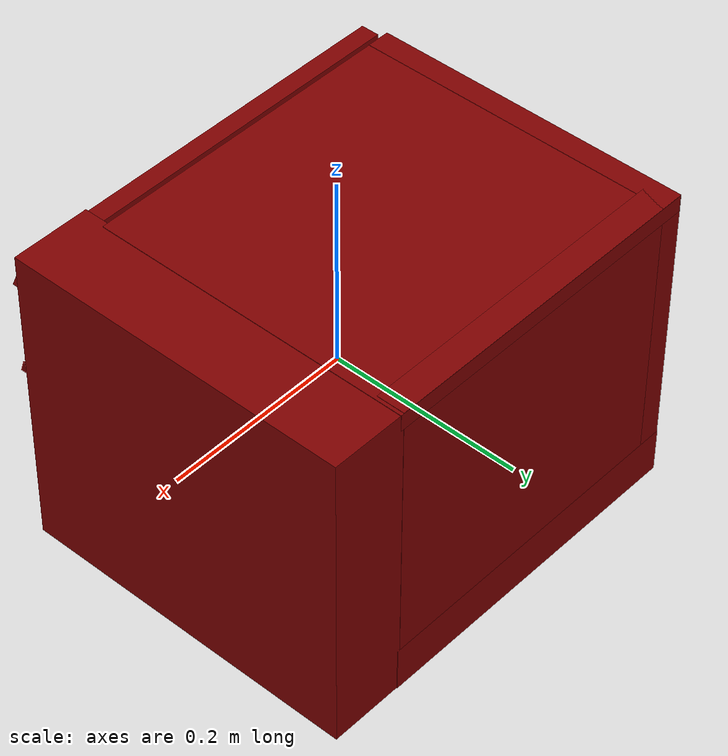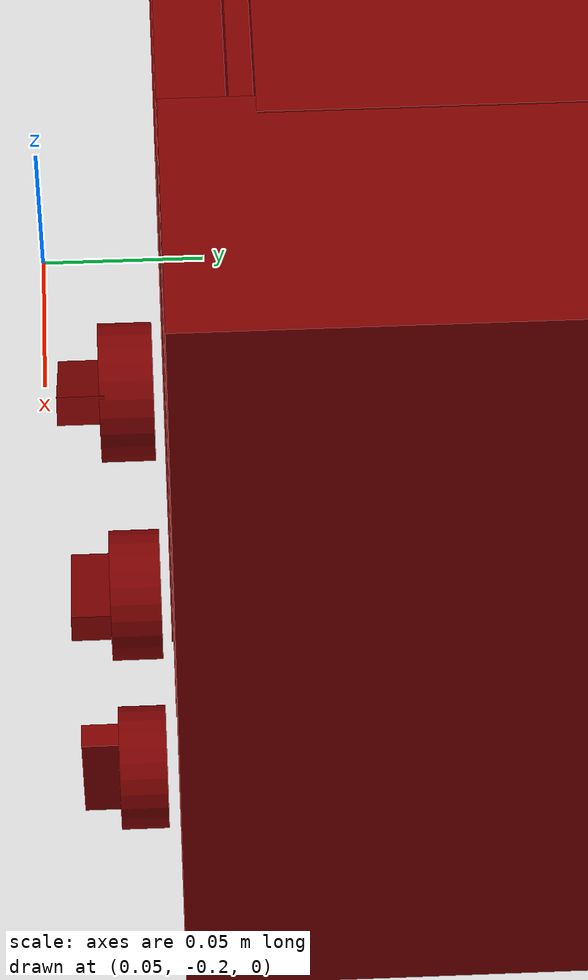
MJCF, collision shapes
<?xml version='1.0' encoding='UTF-8'?>
<mujoco model="model">
  <option timestep="0.002" gravity="0.0 0.0 -9.81"/>
  <compiler angle="radian"/>
  <asset>
    <mesh file="visuals/Body001.obj" name="Body001_vis"/>
    <mesh file="visuals/Container001.obj" name="Container001_vis"/>
    <mesh file="visuals/Door001.obj" name="Door001_vis"/>
    <mesh file="visuals/Door001_Clear.obj" name="Door001_Clear_vis"/>
    <mesh file="visuals/Knob001.obj" name="Knob001_vis"/>
    <mesh file="visuals/Knob002.obj" name="Knob002_vis"/>
    <mesh file="visuals/Knob003.obj" name="Knob003_vis"/>
    <texture file="visuals/T_BC001.png" name="Body001_material" type="2d"/>
    <material name="Body001_material" rgba="1 1 1 1.0" texture="Body001_material" shininess="0.1" specular="4"/>
    <texture file="visuals/T_BC001.png" name="Container001_material" type="2d"/>
    <material name="Container001_material" rgba="1 1 1 1.0" texture="Container001_material" shininess="0.1" specular="4"/>
    <texture file="visuals/T_BC001.png" name="Door001_material" type="2d"/>
    <material name="Door001_material" rgba="1 1 1 1.0" texture="Door001_material" shininess="0.1" specular="4"/>
    <texture file="visuals/T_BC001.png" name="Door001_Clear_material" type="2d"/>
    <material name="Door001_Clear_material" rgba="1 1 1 0.800000011920929" texture="Door001_Clear_material" shininess="0.141421377658844" specular="0.3103448502657381"/>
    <texture file="visuals/T_BC001.png" name="Knob001_material" type="2d"/>
    <material name="Knob001_material" rgba="1 1 1 1.0" texture="Knob001_material" shininess="0.141421377658844" specular="0.3103448502657381"/>
    <texture file="visuals/T_BC001.png" name="Knob002_material" type="2d"/>
    <material name="Knob002_material" rgba="1 1 1 1.0" texture="Knob002_material" shininess="0.141421377658844" specular="0.3103448502657381"/>
    <texture file="visuals/T_BC001.png" name="Knob003_material" type="2d"/>
    <material name="Knob003_material" rgba="1 1 1 1.0" texture="Knob003_material" shininess="0.141421377658844" specular="0.3103448502657381"/>
  </asset>
  <default>
    <default class="visual">
      <geom conaffinity="0" contype="0" group="1" type="mesh"/>
    </default>
    <default class="collision">
      <geom group="0" rgba="0.5 0 0 0.5"/>
    </default>
    <default class="spawn">
      <geom group="0" rgba="1 1 1 0.5" contype="0" conaffinity="0"/>
      <site group="0" rgba="1 1 1 0.5"/>
    </default>
    <default class="region">
      <geom group="1" conaffinity="0" contype="0" rgba="0 1 0 0"/>
    </default>
  </default>
  <worldbody>
    <body>
      <body name="object">
        <geom mesh="Body001_vis" type="mesh" solimp="0.998 0.998 0.001" solref="0.001 1" friction="0.95 0.3 0.1" class="visual" material="Body001_material"/>
        <geom class="collision" type="box" pos="-0.2039780169725418 0.02983897738158703 0.02243412286043167" size="0.012105473317205906 0.1663031131029129 0.14247852563858032" quat="1.0 0.0 0.0 0.0" density="1000.0"/>
        <geom class="collision" type="box" pos="-0.03818407282233238 0.03018273413181305 -0.1412220299243927" size="0.17800679802894592 0.16640129685401917 0.02400331199169159" quat="1.0 0.0 0.0 0.0" density="1000.0"/>
        <geom class="collision" type="box" pos="-0.03884332999587059 0.18181969225406647 0.018248729407787323" size="0.17590925097465515 0.01430332288146019 0.14666391909122467" quat="1.0 0.0 0.0 0.0" density="1000.0"/>
        <geom class="collision" type="box" pos="0.17522159218788147 0.01642169989645481 -0.0005831364542245865" size="0.040945589542388916 0.1794576495885849 0.16464221477508545" quat="1.0 0.0 0.0 0.0" density="1000.0"/>
        <geom class="collision" type="box" pos="-0.0372847244143486 0.02990785986185074 0.15587566792964935" size="0.1778637319803238 0.16637198626995087 0.00870265532284975" quat="1.0 0.0 0.0 0.0" density="1000.0"/>
        <body name="Container001">
          <joint axis="0.0 -1.0 0.0" pos="-0.02863200753927231 0.008345536887645721 -0.020821314305067062" limited="true" name="Container001_joint" range="0.0 0.2" type="slide" damping="1" frictionloss="1" armature=".01" stiffness="0.05"/>
          <geom mesh="Container001_vis" type="mesh" solimp="0.998 0.998 0.001" solref="0.001 1" friction="0.95 0.3 0.1" class="visual" material="Container001_material"/>
          <geom class="collision" type="box" pos="-0.028050508350133896 0.008563034236431122 -0.028848711401224136" size="0.13570380210876465 0.12284987419843674 0.0030371074099093676" quat="1.0 0.0 0.0 0.0" density="1000.0"/>
          <geom class="collision" type="box" pos="-0.18249717354774475 0.008482776582241058 -0.019134825095534325" size="0.008577265776693821 0.12300089001655579 0.001667578355409205" quat="1.0 0.0 0.0 0.0" density="1000.0"/>
          <geom class="collision" type="box" pos="-0.16859766840934753 0.008476205170154572 -0.0239250548183918" size="0.008577265776693821 0.12300733476877213 0.0016675618244335055" quat="0.9440328478813171 -2.0632491271044273e-08 0.3298514783382416 7.209132402152818e-09" density="1000.0"/>
          <geom class="collision" type="box" pos="0.11243189126253128 0.008476205170154572 -0.0239250585436821" size="0.008577265776693821 0.12300733476877213 0.0016675632214173675" quat="7.127249546101666e-08 -0.9440328478813171 -2.4903092921135794e-08 -0.3298514783382416" density="1000.0"/>
          <geom class="collision" type="box" pos="0.12554088234901428 0.008482776582241058 -0.019134825095534325" size="0.008577265776693821 0.12300089001655579 0.0016675770748406649" quat="1.0 0.0 0.0 0.0" density="1000.0"/>
          <geom class="collision" type="box" pos="-0.16493761539459229 0.010533653199672699 -0.018656564876437187" size="0.01039555948227644 0.10141760855913162 0.0013619251549243927" quat="0.834775984287262 4.428881439366705e-08 0.5505897402763367 -1.4126015912552248e-09" density="1000.0"/>
          <geom class="collision" type="box" pos="-0.03083999827504158 -0.10302694886922836 -0.01817888766527176" size="0.010395568795502186 0.12232555449008942 0.0013619264354929328" quat="0.560018002986908 -0.43171724677085876 0.43171700835227966 0.5600183010101318" density="1000.0"/>
          <geom class="collision" type="box" pos="0.10875650495290756 0.010533653199672699 -0.018656564876437187" size="0.01039555948227644 0.10141760855913162 0.0013619245728477836" quat="3.057072106571468e-08 0.834775984287262 7.635384768889253e-09 0.5505897402763367" density="1000.0"/>
          <geom class="collision" type="box" pos="-0.03083999827504158 0.12535318732261658 -0.01817888766527176" size="0.010395568795502186 0.12232556194067001 0.0013619264354929328" quat="0.4317195415496826 -0.5600150227546692 -0.5600212216377258 -0.4317147433757782" density="1000.0"/>
          <geom class="collision" type="box" pos="-0.1612498164176941 -0.09286633878946304 -0.018656564876437187" size="0.010395561344921589 0.006986099295318127 0.0013619264354929328" quat="0.8021135926246643 -0.15250766277313232 0.529046893119812 0.2312241494655609" density="1000.0"/>
          <geom class="collision" type="box" pos="-0.15337800979614258 -0.10008872300386429 -0.0186565350741148" size="0.010395553894340992 0.006986084394156933 0.0013619114179164171" quat="0.7184903621673584 -0.28031352162361145 0.4738919734954834 0.42499685287475586" density="1000.0"/>
          <geom class="collision" type="box" pos="-0.17176541686058044 0.010817445814609528 -0.010645815171301365" size="0.004246903117746115 0.10587436705827713 0.0010674488730728626" quat="1.0 0.0 0.0 0.0" density="1000.0"/>
          <geom class="collision" type="box" pos="-0.028321076184511185 -0.10664210468530655 -0.010645815171301365" size="0.13291940093040466 0.0026962740812450647 0.0010674601653590798" quat="1.0 0.0 0.0 0.0" density="1000.0"/>
          <geom class="collision" type="box" pos="-0.16910240054130554 -0.09683189541101456 -0.010645815171301365" size="0.004246895667165518 0.0049521178007125854 0.001067434437572956" quat="0.9630976915359497 -7.488371522867965e-08 -9.14879993985096e-09 0.26915204524993896" density="1000.0"/>
          <geom class="collision" type="box" pos="-0.16307449340820312 -0.10251424461603165 -0.010645815171301365" size="0.004246910102665424 0.0058218990452587605 0.001067434437572956" quat="0.8660538792610168 -1.892820655768901e-08 -1.0926773263975065e-08 0.49995070695877075" density="1000.0"/>
          <geom class="collision" type="box" pos="-0.16307446360588074 0.12372057884931564 -0.010645815171301365" size="0.004246910568326712 0.005821899976581335 0.001067434437572956" quat="4.651263196819855e-08 -0.4999507665634155 -0.8660538196563721 -7.04378493310287e-08" density="1000.0"/>
          <geom class="collision" type="box" pos="-0.16910240054130554 0.11803831905126572 -0.010645815171301365" size="0.004246896132826805 0.00495211873203516 0.001067434437572956" quat="8.102094284367922e-08 0.26915183663368225 0.9630977511405945 9.41175226643054e-09" density="1000.0"/>
          <geom class="collision" type="box" pos="-0.15337803959846497 0.12129520624876022 -0.018656549975275993" size="0.010395553894340992 0.006986084394156933 0.0013619116507470608" quat="0.47389188408851624 -0.4249967634677887 -0.718490481376648 -0.28031349182128906" density="1000.0"/>
          <geom class="collision" type="box" pos="-0.1612497866153717 0.11407285183668137 -0.01865655742585659" size="0.010395561344921589 0.006986069027334452 0.0013619264354929328" quat="0.5290467739105225 -0.23122406005859375 -0.8021137118339539 -0.15250757336616516" density="1000.0"/>
          <geom class="collision" type="box" pos="-0.028321072459220886 0.12875303626060486 -0.010645815171301365" size="0.13291940093040466 0.0026962740812450647 0.0010674601653590798" quat="1.0 0.0 0.0 0.0" density="1000.0"/>
          <geom class="collision" type="box" pos="0.1047220453619957 0.11407282203435898 -0.018656549975275993" size="0.010395561344921589 0.006986069027334452 0.0013619264354929328" quat="0.23122398555278778 0.5290467143058777 0.15250754356384277 -0.8021137714385986" density="1000.0"/>
          <geom class="collision" type="box" pos="0.0967593565583229 0.12129524350166321 -0.018656564876437187" size="0.010395553894340992 0.006986084394156933 0.0013619114179164171" quat="0.4249967038631439 0.4738917648792267 0.2803133726119995 -0.7184906601905823" density="1000.0"/>
          <geom class="collision" type="box" pos="0.11248376220464706 0.1180383488535881 -0.010645815171301365" size="0.004246910568326712 0.0049521178007125854 0.001067434437572956" quat="0.2691517472267151 6.893825510445595e-09 1.7478617664323792e-08 -0.9630978107452393" density="1000.0"/>
          <geom class="collision" type="box" pos="0.10645585507154465 0.12372057884931564 -0.010645815171301365" size="0.004246910568326712 0.005821899976581335 0.001067434437572956" quat="0.49995073676109314 1.88726119176863e-08 -3.26926254956561e-08 -0.8660538196563721" density="1000.0"/>
          <geom class="collision" type="box" pos="0.10685639828443527 -0.10251421481370926 -0.010645815171301365" size="0.004246910102665424 0.0058218990452587605 0.001067434437572956" quat="6.538524388588485e-08 -0.8660538792610168 0.49995070695877075 -3.7745238046227314e-08" density="1000.0"/>
          <geom class="collision" type="box" pos="0.11288433521986008 -0.09683189541101456 -0.010645815171301365" size="0.004246911033987999 0.00495211873203516 0.001067434437572956" quat="7.576508664897119e-08 -0.9630977511405945 0.26915186643600464 -9.395116684629556e-09" density="1000.0"/>
          <geom class="collision" type="box" pos="0.09675941616296768 -0.10008878260850906 -0.01865657977759838" size="0.010395553894340992 0.006986084394156933 0.0013619114179164171" quat="0.28031325340270996 0.718490719795227 -0.4249964952468872 0.4738919138908386" density="1000.0"/>
          <geom class="collision" type="box" pos="0.10463114827871323 -0.09286630898714066 -0.018656549975275993" size="0.010395561344921589 0.006986069027334452 0.0013619264354929328" quat="0.15250751376152039 0.8021135926246643 -0.23122410476207733 0.5290469527244568" density="1000.0"/>
          <geom class="collision" type="box" pos="0.11535313725471497 0.010817445814609528 -0.010645815171301365" size="0.0042469012551009655 0.10587436705827713 0.0010674488730728626" quat="1.0 0.0 0.0 0.0" density="1000.0"/>
        </body>
        <body name="Door001">
          <joint axis="1.0 0.0 0.0" pos="-0.04003842920064926 -0.1410684585571289 -0.13804776966571808" limited="true" name="Door001_joint" range="0.0 1.5707963267948966" type="hinge" damping="1" frictionloss="1" armature=".01" stiffness="2" springref="-1"/>
          <geom mesh="Door001_vis" type="mesh" solimp="0.998 0.998 0.001" solref="0.001 1" friction="0.95 0.3 0.1" class="visual" material="Door001_material"/>
          <geom class="collision" type="box" pos="-0.04012495279312134 -0.15384447574615479 0.013099052011966705" size="0.17263935506343842 0.00944715365767479 0.14747793972492218" quat="1.0 0.0 0.0 0.0" density="1000.0"/>
          <body name="Door001_Clear">
            <geom mesh="Door001_Clear_vis" type="mesh" solimp="0.998 0.998 0.001" solref="0.001 1" friction="0.95 0.3 0.1" class="visual" material="Door001_Clear_material"/>
            <geom class="collision" type="box" pos="-0.040320515632629395 -0.16180023550987244 -0.0015764464624226093" size="0.15256385505199432 0.002023582113906741 0.11862297356128693" quat="1.0 0.0 0.0 0.0" density="1000.0"/>
          </body>
        </body>
        <body name="Knob001">
          <joint axis="0.0 1.0 0.0" pos="0.17913579940795898 -0.1798498034477234 0.09543565660715103" limited="true" name="Knob001_joint" range="0.0 4.363323129985823" type="hinge" damping="0.05" armature="0.001" springref="-0.1"/>
          <geom mesh="Knob001_vis" type="mesh" solimp="0.998 0.998 0.001" solref="0.001 1" friction="0.95 0.3 0.1" class="visual" material="Knob001_material"/>
          <geom class="collision" type="cylinder" pos="0.17913579940795898 -0.17404791712760925 0.09452540427446365" size="0.019237585365772247 0.007395401131361723" quat="0.7071068286895752 0.7071067690849304 0.0 0.0" density="1000.0"/>
          <geom class="collision" type="box" pos="0.1793217957019806 -0.1865006983280182 0.09543345123529434" size="0.004002058412879705 0.006478690076619387 0.01813562400639057" quat="0.46072059869766235 2.18099057694085e-14 -0.8875452280044556 -1.1924949205877056e-07" density="1000.0"/>
        </body>
        <body name="Knob002">
          <joint axis="0.0 1.0 0.0" pos="0.17913579940795898 -0.17962169647216797 -0.0010332679376006126" limited="true" name="Knob002_joint" range="0.0 3.9269908169872414" type="hinge" damping="0.05" armature="0.001" springref="-0.1"/>
          <geom mesh="Knob002_vis" type="mesh" solimp="0.998 0.998 0.001" solref="0.001 1" friction="0.95 0.3 0.1" class="visual" material="Knob002_material"/>
          <geom class="collision" type="cylinder" pos="0.17913579940795898 -0.17404791712760925 -0.0007199756801128387" size="0.019237585365772247 0.007395401131361723" quat="0.7071068286895752 0.7071067690849304 0.0 0.0" density="1000.0"/>
          <geom class="collision" type="box" pos="0.17912283539772034 -0.1865006983280182 -0.0009346618317067623" size="0.004002058412879705 0.006478690076619387 0.01813562400639057" quat="0.549201488494873 -1.159461659712771e-13 -0.8356899619102478 -1.122822652632749e-07" density="1000.0"/>
        </body>
        <body name="Knob003">
          <joint axis="0.0 1.0 0.0" pos="0.17913579940795898 -0.17962771654129028 -0.09254294633865356" limited="true" name="Knob003_joint" range="0.0 4.014257279586958" type="hinge" damping="0.05" armature="0.001" springref="-0.1"/>
          <geom mesh="Knob003_vis" type="mesh" solimp="0.998 0.998 0.001" solref="0.001 1" friction="0.95 0.3 0.1" class="visual" material="Knob003_material"/>
          <geom class="collision" type="cylinder" pos="0.17913579940795898 -0.17404791712760925 -0.09294281899929047" size="0.019237585365772247 0.007395401131361723" quat="0.7071068286895752 0.7071067690849304 0.0 0.0" density="1000.0"/>
          <geom class="collision" type="box" pos="0.17882436513900757 -0.1865006983280182 -0.0927700400352478" size="0.004002058412879705 0.006478690076619387 0.018135633319616318" quat="1.0 0.0 0.0 0.0" density="1000.0"/>
        </body>
        <geom class="region" name="reg_int" type="box" pos="-0.029449962079524994 0.014062367379665375 0.014934707432985306" size="0.1624775305390358 0.1557905152440071 0.1327807866036892"/>
        <geom class="region" name="reg_main" type="box" pos="-3.725290298461914e-09 0.015343382954597473 0.0" size="0.2164328396320343 0.1818493753671646 0.1652253419160843"/>
      </body>
    </body>
  </worldbody>
  <actuator>
    <motor name="Container001_joint_actuator" joint="Container001_joint" gear="10"/>
    <motor name="Door001_joint_actuator" joint="Door001_joint" gear="50"/>
    <motor name="Knob001_joint_actuator" joint="Knob001_joint" gear="50"/>
    <motor name="Knob002_joint_actuator" joint="Knob002_joint" gear="50"/>
    <motor name="Knob003_joint_actuator" joint="Knob003_joint" gear="50"/>
  </actuator>
</mujoco>
